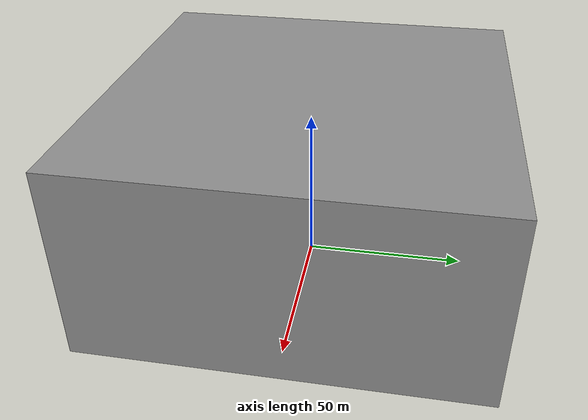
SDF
<?xml version="1.0" ?>
<sdf version="1.5">
  <model name="ki_building">
    <static>true</static>
    <link name="link">
      <pose>0 0 30.0 0 0 0</pose>
      <collision name="collision">
        <geometry>
          <box>
            <size>120 120 60</size>
          </box>
        </geometry>
      </collision>
      <visual name="visual">
        <geometry>
          <box>
            <size>120 120 60</size>
          </box>
        </geometry>
        <material>
          <script>
            <name>Gazebo/Grey</name>
            <uri>file://media/materials/scripts/gazebo.material</uri>
          </script>
        </material>
      </visual>
    </link>
  </model>
</sdf>
